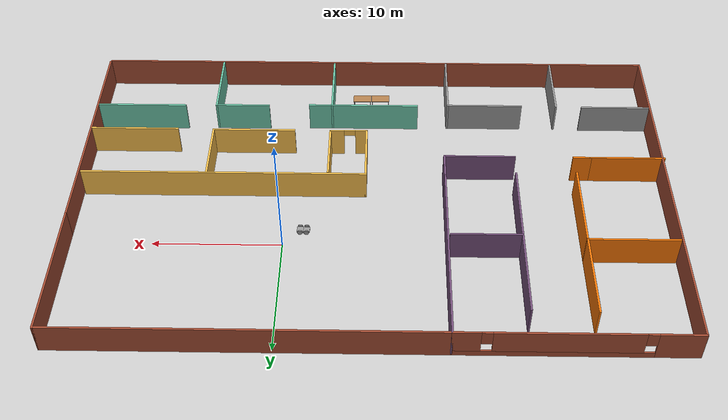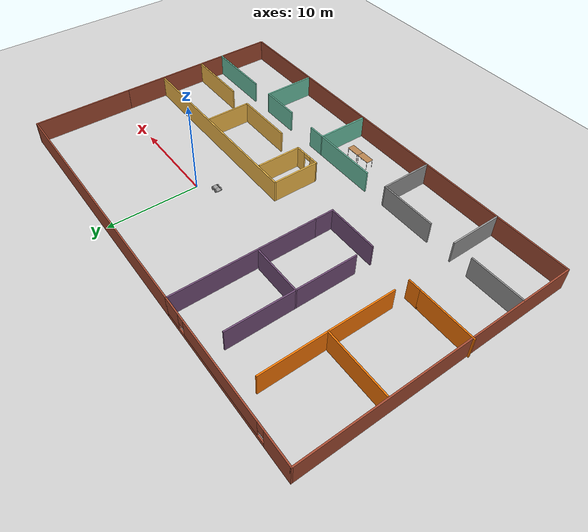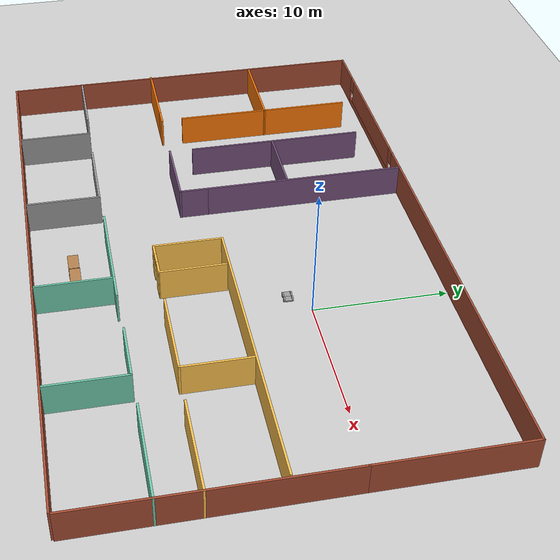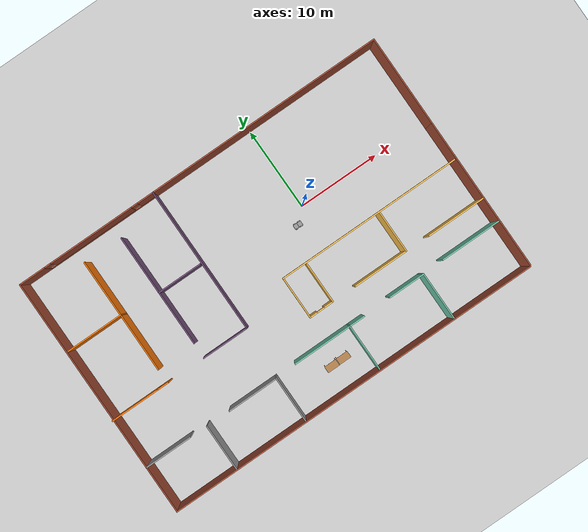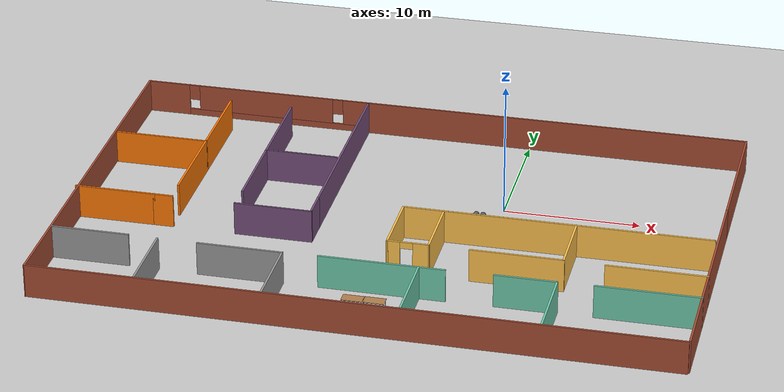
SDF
<sdf version="1.6">
 <world name="default">
  <model name="ground_plane">
   <static>1</static>
   <link name="link">
    <collision name="collision">
     <geometry><plane><normal>0 0 1</normal><size>100 100</size></plane></geometry>
     <surface><friction><ode><mu>100</mu><mu2>50</mu2></ode></friction></surface>
    </collision>
    <visual name="visual">
     <cast_shadows>0</cast_shadows>
     <geometry><plane><normal>0 0 1</normal><size>100 100</size></plane></geometry>
     <material>
      <script><uri>file://media/materials/scripts/gazebo.material</uri><name>Gazebo/Grey</name></script>
     </material>
    </visual>
   </link>
  </model>
  <model name="lil_robot">
   <link name="link_1">
    <inertial>
     <mass>1</mass>
     <inertia>
      <ixx>0.166667</ixx>
      <ixy>0</ixy>
      <ixz>0</ixz>
      <iyy>0.166667</iyy>
      <iyz>0</iyz>
      <izz>0.166667</izz>
     </inertia>
    </inertial>
    <pose>-0.159267 -0.015 -0.014999 0 -0 0</pose>
    <visual name="visual">
     <geometry><box><size>0.5 0.5 0.1</size></box></geometry>
     <material>
      <lighting>1</lighting>
      <script><uri>file://media/materials/scripts/gazebo.material</uri><name>Gazebo/Grey</name></script>
      <shader type="vertex"><normal_map>__default__</normal_map></shader>
      <ambient>0.3 0.3 0.3 1</ambient>
      <diffuse>0.7 0.7 0.7 1</diffuse>
      <specular>0.01 0.01 0.01 1</specular>
      <emissive>0 0 0 1</emissive>
     </material>
    </visual>
    <collision name="collision">
     <geometry><box><size>0.5 0.5 0.1</size></box></geometry>
     <surface>
      <friction>
       <ode><mu>1</mu><mu2>1</mu2><fdir1>0 0 0</fdir1><slip1>0</slip1><slip2>0</slip2></ode>
       <torsional>
        <coefficient>1</coefficient>
        <patch_radius>0</patch_radius>
        <surface_radius>0</surface_radius>
        <use_patch_radius>1</use_patch_radius>
        <ode><slip>0</slip></ode>
       </torsional>
      </friction>
      <bounce><restitution_coefficient>0</restitution_coefficient><threshold>1e+06</threshold></bounce>
      <contact>
       <collide_without_contact>0</collide_without_contact>
       <collide_without_contact_bitmask>1</collide_without_contact_bitmask>
       <collide_bitmask>1</collide_bitmask>
       <ode>
        <soft_cfm>0</soft_cfm>
        <soft_erp>0.2</soft_erp>
        <kp>1e+13</kp>
        <kd>1</kd>
        <max_vel>0.01</max_vel>
        <min_depth>0</min_depth>
       </ode>
       <bullet>
        <split_impulse>1</split_impulse>
        <split_impulse_penetration_threshold>-0.01</split_impulse_penetration_threshold>
        <soft_cfm>0</soft_cfm>
        <soft_erp>0.2</soft_erp>
        <kp>1e+13</kp>
        <kd>1</kd>
       </bullet>
      </contact>
     </surface>
    </collision>
   </link>
   <link name="link_1_clone">
    <inertial>
     <mass>1</mass>
     <inertia>
      <ixx>0.166667</ixx>
      <ixy>0</ixy>
      <ixz>0</ixz>
      <iyy>0.166667</iyy>
      <iyz>0</iyz>
      <izz>0.166667</izz>
     </inertia>
    </inertial>
    <pose>0.340733 -0.015 -0.014999 0 -0 0</pose>
    <visual name="visual">
     <geometry><box><size>0.5 0.5 0.1</size></box></geometry>
     <material>
      <lighting>1</lighting>
      <script><uri>file://media/materials/scripts/gazebo.material</uri><name>Gazebo/Grey</name></script>
      <shader type="vertex"><normal_map>__default__</normal_map></shader>
      <ambient>0.3 0.3 0.3 1</ambient>
      <diffuse>0.7 0.7 0.7 1</diffuse>
      <specular>0.01 0.01 0.01 1</specular>
      <emissive>0 0 0 1</emissive>
     </material>
    </visual>
    <collision name="collision">
     <geometry><box><size>0.5 0.5 0.1</size></box></geometry>
     <surface>
      <friction>
       <ode><mu>1</mu><mu2>1</mu2><fdir1>0 0 0</fdir1><slip1>0</slip1><slip2>0</slip2></ode>
       <torsional>
        <coefficient>1</coefficient>
        <patch_radius>0</patch_radius>
        <surface_radius>0</surface_radius>
        <use_patch_radius>1</use_patch_radius>
        <ode><slip>0</slip></ode>
       </torsional>
      </friction>
      <bounce><restitution_coefficient>0</restitution_coefficient><threshold>1e+06</threshold></bounce>
      <contact>
       <collide_without_contact>0</collide_without_contact>
       <collide_without_contact_bitmask>1</collide_without_contact_bitmask>
       <collide_bitmask>1</collide_bitmask>
       <ode>
        <soft_cfm>0</soft_cfm>
        <soft_erp>0.2</soft_erp>
        <kp>1e+13</kp>
        <kd>1</kd>
        <max_vel>0.01</max_vel>
        <min_depth>0</min_depth>
       </ode>
       <bullet>
        <split_impulse>1</split_impulse>
        <split_impulse_penetration_threshold>-0.01</split_impulse_penetration_threshold>
        <soft_cfm>0</soft_cfm>
        <soft_erp>0.2</soft_erp>
        <kp>1e+13</kp>
        <kd>1</kd>
       </bullet>
      </contact>
     </surface>
    </collision>
   </link>
   <link name="link_2_clone">
    <inertial>
     <mass>1</mass>
     <inertia><ixx>0.145833</ixx><ixy>0</ixy><ixz>0</ixz><iyy>0.145833</iyy><iyz>0</iyz><izz>0.125</izz></inertia>
    </inertial>
    <pose>0.340733 0.285019 -0.014999 1.5707 -0 0</pose>
    <visual name="visual">
     <geometry><cylinder><radius>0.2</radius><length>0.1</length></cylinder></geometry>
     <material>
      <lighting>1</lighting>
      <script><uri>file://media/materials/scripts/gazebo.material</uri><name>Gazebo/Grey</name></script>
      <shader type="vertex"><normal_map>__default__</normal_map></shader>
      <ambient>0.3 0.3 0.3 1</ambient>
      <diffuse>0.7 0.7 0.7 1</diffuse>
      <specular>0.01 0.01 0.01 1</specular>
      <emissive>0 0 0 1</emissive>
     </material>
    </visual>
    <collision name="collision">
     <geometry><cylinder><radius>0.2</radius><length>0.1</length></cylinder></geometry>
     <surface>
      <friction>
       <ode><mu>1</mu><mu2>1</mu2><fdir1>0 0 0</fdir1><slip1>0</slip1><slip2>0</slip2></ode>
       <torsional>
        <coefficient>1</coefficient>
        <patch_radius>0</patch_radius>
        <surface_radius>0</surface_radius>
        <use_patch_radius>1</use_patch_radius>
        <ode><slip>0</slip></ode>
       </torsional>
      </friction>
      <bounce><restitution_coefficient>0</restitution_coefficient><threshold>1e+06</threshold></bounce>
      <contact>
       <collide_without_contact>0</collide_without_contact>
       <collide_without_contact_bitmask>1</collide_without_contact_bitmask>
       <collide_bitmask>1</collide_bitmask>
       <ode>
        <soft_cfm>0</soft_cfm>
        <soft_erp>0.2</soft_erp>
        <kp>1e+13</kp>
        <kd>1</kd>
        <max_vel>0.01</max_vel>
        <min_depth>0</min_depth>
       </ode>
       <bullet>
        <split_impulse>1</split_impulse>
        <split_impulse_penetration_threshold>-0.01</split_impulse_penetration_threshold>
        <soft_cfm>0</soft_cfm>
        <soft_erp>0.2</soft_erp>
        <kp>1e+13</kp>
        <kd>1</kd>
       </bullet>
      </contact>
     </surface>
    </collision>
   </link>
   <link name="link_2_clone_clone">
    <inertial>
     <mass>1</mass>
     <inertia><ixx>0.145833</ixx><ixy>0</ixy><ixz>0</ixz><iyy>0.145833</iyy><iyz>0</iyz><izz>0.125</izz></inertia>
    </inertial>
    <pose>0.340733 -0.315019 -0.014999 1.5707 -0 0</pose>
    <visual name="visual">
     <geometry><cylinder><radius>0.2</radius><length>0.1</length></cylinder></geometry>
     <material>
      <lighting>1</lighting>
      <script><uri>file://media/materials/scripts/gazebo.material</uri><name>Gazebo/Grey</name></script>
      <shader type="vertex"><normal_map>__default__</normal_map></shader>
      <ambient>0.3 0.3 0.3 1</ambient>
      <diffuse>0.7 0.7 0.7 1</diffuse>
      <specular>0.01 0.01 0.01 1</specular>
      <emissive>0 0 0 1</emissive>
     </material>
    </visual>
    <collision name="collision">
     <geometry><cylinder><radius>0.2</radius><length>0.1</length></cylinder></geometry>
     <surface>
      <friction>
       <ode><mu>1</mu><mu2>1</mu2><fdir1>0 0 0</fdir1><slip1>0</slip1><slip2>0</slip2></ode>
       <torsional>
        <coefficient>1</coefficient>
        <patch_radius>0</patch_radius>
        <surface_radius>0</surface_radius>
        <use_patch_radius>1</use_patch_radius>
        <ode><slip>0</slip></ode>
       </torsional>
      </friction>
      <bounce><restitution_coefficient>0</restitution_coefficient><threshold>1e+06</threshold></bounce>
      <contact>
       <collide_without_contact>0</collide_without_contact>
       <collide_without_contact_bitmask>1</collide_without_contact_bitmask>
       <collide_bitmask>1</collide_bitmask>
       <ode>
        <soft_cfm>0</soft_cfm>
        <soft_erp>0.2</soft_erp>
        <kp>1e+13</kp>
        <kd>1</kd>
        <max_vel>0.01</max_vel>
        <min_depth>0</min_depth>
       </ode>
       <bullet>
        <split_impulse>1</split_impulse>
        <split_impulse_penetration_threshold>-0.01</split_impulse_penetration_threshold>
        <soft_cfm>0</soft_cfm>
        <soft_erp>0.2</soft_erp>
        <kp>1e+13</kp>
        <kd>1</kd>
       </bullet>
      </contact>
     </surface>
    </collision>
   </link>
   <link name="link_2_clone_clone_0">
    <inertial>
     <mass>1</mass>
     <inertia><ixx>0.145833</ixx><ixy>0</ixy><ixz>0</ixz><iyy>0.145833</iyy><iyz>0</iyz><izz>0.125</izz></inertia>
    </inertial>
    <pose>-0.159267 0.285019 -0.014999 1.5707 -0 0</pose>
    <visual name="visual">
     <geometry><cylinder><radius>0.2</radius><length>0.1</length></cylinder></geometry>
     <material>
      <lighting>1</lighting>
      <script><uri>file://media/materials/scripts/gazebo.material</uri><name>Gazebo/Grey</name></script>
      <shader type="vertex"><normal_map>__default__</normal_map></shader>
      <ambient>0.3 0.3 0.3 1</ambient>
      <diffuse>0.7 0.7 0.7 1</diffuse>
      <specular>0.01 0.01 0.01 1</specular>
      <emissive>0 0 0 1</emissive>
     </material>
    </visual>
    <collision name="collision">
     <geometry><cylinder><radius>0.2</radius><length>0.1</length></cylinder></geometry>
     <surface>
      <friction>
       <ode><mu>1</mu><mu2>1</mu2><fdir1>0 0 0</fdir1><slip1>0</slip1><slip2>0</slip2></ode>
       <torsional>
        <coefficient>1</coefficient>
        <patch_radius>0</patch_radius>
        <surface_radius>0</surface_radius>
        <use_patch_radius>1</use_patch_radius>
        <ode><slip>0</slip></ode>
       </torsional>
      </friction>
      <bounce><restitution_coefficient>0</restitution_coefficient><threshold>1e+06</threshold></bounce>
      <contact>
       <collide_without_contact>0</collide_without_contact>
       <collide_without_contact_bitmask>1</collide_without_contact_bitmask>
       <collide_bitmask>1</collide_bitmask>
       <ode>
        <soft_cfm>0</soft_cfm>
        <soft_erp>0.2</soft_erp>
        <kp>1e+13</kp>
        <kd>1</kd>
        <max_vel>0.01</max_vel>
        <min_depth>0</min_depth>
       </ode>
       <bullet>
        <split_impulse>1</split_impulse>
        <split_impulse_penetration_threshold>-0.01</split_impulse_penetration_threshold>
        <soft_cfm>0</soft_cfm>
        <soft_erp>0.2</soft_erp>
        <kp>1e+13</kp>
        <kd>1</kd>
       </bullet>
      </contact>
     </surface>
    </collision>
   </link>
   <link name="link_2_clone_clone_1">
    <inertial>
     <mass>1</mass>
     <inertia><ixx>0.145833</ixx><ixy>0</ixy><ixz>0</ixz><iyy>0.145833</iyy><iyz>0</iyz><izz>0.125</izz></inertia>
    </inertial>
    <pose>-0.159267 -0.315019 -0.014999 1.5707 -0 0</pose>
    <visual name="visual">
     <geometry><cylinder><radius>0.2</radius><length>0.1</length></cylinder></geometry>
     <material>
      <lighting>1</lighting>
      <script><uri>file://media/materials/scripts/gazebo.material</uri><name>Gazebo/Grey</name></script>
      <shader type="vertex"><normal_map>__default__</normal_map></shader>
      <ambient>0.3 0.3 0.3 1</ambient>
      <diffuse>0.7 0.7 0.7 1</diffuse>
      <specular>0.01 0.01 0.01 1</specular>
      <emissive>0 0 0 1</emissive>
     </material>
    </visual>
    <collision name="collision">
     <geometry><cylinder><radius>0.2</radius><length>0.1</length></cylinder></geometry>
     <surface>
      <friction>
       <ode><mu>1</mu><mu2>1</mu2><fdir1>0 0 0</fdir1><slip1>0</slip1><slip2>0</slip2></ode>
       <torsional>
        <coefficient>1</coefficient>
        <patch_radius>0</patch_radius>
        <surface_radius>0</surface_radius>
        <use_patch_radius>1</use_patch_radius>
        <ode><slip>0</slip></ode>
       </torsional>
      </friction>
      <bounce><restitution_coefficient>0</restitution_coefficient><threshold>1e+06</threshold></bounce>
      <contact>
       <collide_without_contact>0</collide_without_contact>
       <collide_without_contact_bitmask>1</collide_without_contact_bitmask>
       <collide_bitmask>1</collide_bitmask>
       <ode>
        <soft_cfm>0</soft_cfm>
        <soft_erp>0.2</soft_erp>
        <kp>1e+13</kp>
        <kd>1</kd>
        <max_vel>0.01</max_vel>
        <min_depth>0</min_depth>
       </ode>
       <bullet>
        <split_impulse>1</split_impulse>
        <split_impulse_penetration_threshold>-0.01</split_impulse_penetration_threshold>
        <soft_cfm>0</soft_cfm>
        <soft_erp>0.2</soft_erp>
        <kp>1e+13</kp>
        <kd>1</kd>
       </bullet>
      </contact>
     </surface>
    </collision>
   </link>
   <joint name="link_1_JOINT_1" type="fixed">
    <parent>link_1</parent>
    <child>link_1_clone</child>
    <physics>
     <ode><limit><cfm>0</cfm><erp>0.2</erp></limit><suspension><cfm>0</cfm><erp>0.2</erp></suspension></ode>
    </physics>
   </joint>
   <joint name="link_1_JOINT_3" type="revolute">
    <parent>link_1</parent>
    <child>link_2_clone_clone_0</child>
    <axis>
     <xyz>0 0 1</xyz>
     <use_parent_model_frame>0</use_parent_model_frame>
     <limit>
      <lower>-1.79769e+308</lower>
      <upper>1.79769e+308</upper>
      <effort>-1</effort>
      <velocity>-1</velocity>
     </limit>
     <dynamics>
      <spring_reference>0</spring_reference>
      <spring_stiffness>0</spring_stiffness>
      <damping>0</damping>
     </dynamics>
    </axis>
    <physics>
     <ode><limit><cfm>0</cfm><erp>0.2</erp></limit><suspension><cfm>0</cfm><erp>0.2</erp></suspension></ode>
    </physics>
   </joint>
   <joint name="link_1_JOINT_4" type="revolute">
    <parent>link_1</parent>
    <child>link_2_clone_clone_1</child>
    <axis>
     <xyz>0 0 1</xyz>
     <use_parent_model_frame>0</use_parent_model_frame>
     <limit>
      <lower>-1.79769e+308</lower>
      <upper>1.79769e+308</upper>
      <effort>-1</effort>
      <velocity>-1</velocity>
     </limit>
     <dynamics>
      <spring_reference>0</spring_reference>
      <spring_stiffness>0</spring_stiffness>
      <damping>0</damping>
     </dynamics>
    </axis>
    <physics>
     <ode><limit><cfm>0</cfm><erp>0.2</erp></limit><suspension><cfm>0</cfm><erp>0.2</erp></suspension></ode>
    </physics>
   </joint>
   <joint name="link_1_clone_JOINT_4" type="revolute">
    <parent>link_1_clone</parent>
    <child>link_2_clone</child>
    <axis>
     <xyz>0 0 1</xyz>
     <use_parent_model_frame>0</use_parent_model_frame>
     <limit>
      <lower>-1.79769e+308</lower>
      <upper>1.79769e+308</upper>
      <effort>-1</effort>
      <velocity>-1</velocity>
     </limit>
     <dynamics>
      <spring_reference>0</spring_reference>
      <spring_stiffness>0</spring_stiffness>
      <damping>0</damping>
      <friction>0</friction>
     </dynamics>
    </axis>
    <physics>
     <ode><limit><cfm>0</cfm><erp>0.2</erp></limit><suspension><cfm>0</cfm><erp>0.2</erp></suspension></ode>
    </physics>
   </joint>
   <joint name="link_1_clone_JOINT_5" type="revolute">
    <parent>link_1_clone</parent>
    <child>link_2_clone_clone</child>
    <axis>
     <xyz>0 0 1</xyz>
     <use_parent_model_frame>0</use_parent_model_frame>
     <limit>
      <lower>-1.79769e+308</lower>
      <upper>1.79769e+308</upper>
      <effort>-1</effort>
      <velocity>-1</velocity>
     </limit>
     <dynamics>
      <spring_reference>0</spring_reference>
      <spring_stiffness>0</spring_stiffness>
      <damping>0</damping>
      <friction>0</friction>
     </dynamics>
    </axis>
    <physics>
     <ode><limit><cfm>0</cfm><erp>0.2</erp></limit><suspension><cfm>0</cfm><erp>0.2</erp></suspension></ode>
    </physics>
   </joint>
   <static>0</static>
   <pose>-1.64099 -1.45682 0.215004 -0 -0 -0.016943</pose>
  </model>
  <model name="sinap_office">
   <pose>-6.8627 -4.6506 0 0 -0 0</pose>
   <link name="Wall_11">
    <pose>-14.3528 14.8 0 0 -0 0</pose>
    <visual name="Wall_11_Visual_0">
     <pose>-7.1066 0 1.25 0 -0 0</pose>
     <geometry><box><size>3.2868 0.15 2.5</size></box></geometry>
     <material>
      <script><uri>file://media/materials/scripts/gazebo.material</uri><name>Gazebo/Bricks</name></script>
      <ambient>1 1 1 1</ambient>
     </material>
     <meta><layer>0</layer></meta>
    </visual>
    <collision name="Wall_11_Collision_0">
     <geometry><box><size>3.2868 0.15 2.5</size></box></geometry>
     <pose>-7.1066 0 1.25 0 -0 0</pose>
    </collision>
    <visual name="Wall_11_Visual_1">
     <pose>1.6434 0 0.25 0 -0 0</pose>
     <geometry><box><size>14.2132 0.15 0.5</size></box></geometry>
     <material>
      <script><uri>file://media/materials/scripts/gazebo.material</uri><name>Gazebo/Bricks</name></script>
      <ambient>1 1 1 1</ambient>
     </material>
     <meta><layer>0</layer></meta>
    </visual>
    <collision name="Wall_11_Collision_1">
     <geometry><box><size>14.2132 0.15 0.5</size></box></geometry>
     <pose>1.6434 0 0.25 0 -0 0</pose>
    </collision>
    <visual name="Wall_11_Visual_2">
     <pose>0.608596 0 1.5 0 -0 0</pose>
     <geometry><box><size>10.5436 0.15 2</size></box></geometry>
     <material>
      <script><uri>file://media/materials/scripts/gazebo.material</uri><name>Gazebo/Bricks</name></script>
      <ambient>1 1 1 1</ambient>
     </material>
     <meta><layer>0</layer></meta>
    </visual>
    <collision name="Wall_11_Collision_2">
     <geometry><box><size>10.5436 0.15 2</size></box></geometry>
     <pose>0.608596 0 1.5 0 -0 0</pose>
    </collision>
    <visual name="Wall_11_Visual_3">
     <pose>7.71519 0 1.5 0 -0 0</pose>
     <geometry><box><size>2.06961 0.15 2</size></box></geometry>
     <material>
      <script><uri>file://media/materials/scripts/gazebo.material</uri><name>Gazebo/Bricks</name></script>
      <ambient>1 1 1 1</ambient>
     </material>
     <meta><layer>0</layer></meta>
    </visual>
    <collision name="Wall_11_Collision_3">
     <geometry><box><size>2.06961 0.15 2</size></box></geometry>
     <pose>7.71519 0 1.5 0 -0 0</pose>
    </collision>
    <visual name="Wall_11_Visual_4">
     <pose>-5.0632 0 1.9 0 -0 0</pose>
     <geometry><box><size>0.8 0.15 1.2</size></box></geometry>
     <material>
      <script><uri>file://media/materials/scripts/gazebo.material</uri><name>Gazebo/Bricks</name></script>
      <ambient>1 1 1 1</ambient>
     </material>
     <meta><layer>0</layer></meta>
    </visual>
    <collision name="Wall_11_Collision_4">
     <geometry><box><size>0.8 0.15 1.2</size></box></geometry>
     <pose>-5.0632 0 1.9 0 -0 0</pose>
    </collision>
    <visual name="Wall_11_Visual_5">
     <pose>6.28039 0 1.9 0 -0 0</pose>
     <geometry><box><size>0.8 0.15 1.2</size></box></geometry>
     <material>
      <script><uri>file://media/materials/scripts/gazebo.material</uri><name>Gazebo/Bricks</name></script>
      <ambient>1 1 1 1</ambient>
     </material>
     <meta><layer>0</layer></meta>
    </visual>
    <collision name="Wall_11_Collision_5">
     <geometry><box><size>0.8 0.15 1.2</size></box></geometry>
     <pose>6.28039 0 1.9 0 -0 0</pose>
    </collision>
   </link>
   <link name="Wall_12">
    <collision name="Wall_12_Collision">
     <geometry><box><size>15.75 0.15 2.5</size></box></geometry>
     <pose>0 0 1.25 0 -0 0</pose>
    </collision>
    <visual name="Wall_12_Visual">
     <pose>0 0 1.25 0 -0 0</pose>
     <geometry><box><size>15.75 0.15 2.5</size></box></geometry>
     <material>
      <script><uri>file://media/materials/scripts/gazebo.material</uri><name>Gazebo/Grey</name></script>
      <ambient>0.458824 0.313726 0.482353 1</ambient>
     </material>
     <meta><layer>0</layer></meta>
    </visual>
    <pose>-5.67784 7 0 0 -0 -1.5708</pose>
   </link>
   <link name="Wall_14">
    <collision name="Wall_14_Collision">
     <geometry><box><size>29 0.15 2.5</size></box></geometry>
     <pose>0 0 1.25 0 -0 0</pose>
    </collision>
    <visual name="Wall_14_Visual">
     <pose>0 0 1.25 0 -0 0</pose>
     <geometry><box><size>29 0.15 2.5</size></box></geometry>
     <material>
      <script><uri>file://media/materials/scripts/gazebo.material</uri><name>Gazebo/Bricks</name></script>
      <ambient>1 1 1 1</ambient>
     </material>
     <meta><layer>0</layer></meta>
    </visual>
    <pose>8.74716 14.8 0 0 -0 0</pose>
   </link>
   <link name="Wall_15">
    <collision name="Wall_15_Collision">
     <geometry><box><size>11 0.15 2.5</size></box></geometry>
     <pose>0 0 1.25 0 -0 0</pose>
    </collision>
    <visual name="Wall_15_Visual">
     <pose>0 0 1.25 0 -0 0</pose>
     <geometry><box><size>11 0.15 2.5</size></box></geometry>
     <material>
      <script><uri>file://media/materials/scripts/gazebo.material</uri><name>Gazebo/Bricks</name></script>
      <ambient>1 1 1 1</ambient>
     </material>
     <meta><layer>0</layer></meta>
    </visual>
    <pose>23.1722 9.375 0 0 -0 -1.5708</pose>
   </link>
   <link name="Wall_16">
    <collision name="Wall_16_Collision">
     <geometry><box><size>18.75 0.15 2.5</size></box></geometry>
     <pose>0 0 1.25 0 -0 0</pose>
    </collision>
    <visual name="Wall_16_Visual">
     <pose>0 0 1.25 0 -0 0</pose>
     <geometry><box><size>18.75 0.15 2.5</size></box></geometry>
     <material>
      <script><uri>file://media/materials/scripts/gazebo.material</uri><name>Gazebo/Bricks</name></script>
      <ambient>1 1 1 1</ambient>
     </material>
     <meta><layer>0</layer></meta>
    </visual>
    <pose>23.1722 -5.35 0 0 -0 -1.5708</pose>
   </link>
   <link name="Wall_18">
    <collision name="Wall_18_Collision">
     <geometry><box><size>46.25 0.15 2.5</size></box></geometry>
     <pose>0 0 1.25 0 -0 0</pose>
    </collision>
    <visual name="Wall_18_Visual">
     <pose>0 0 1.25 0 -0 0</pose>
     <geometry><box><size>46.25 0.15 2.5</size></box></geometry>
     <material>
      <script><uri>file://media/materials/scripts/gazebo.material</uri><name>Gazebo/Bricks</name></script>
      <ambient>0.435294 0.796078 0.67451 1</ambient>
     </material>
     <meta><layer>0</layer></meta>
    </visual>
    <pose>0.022159 -14.8 0 0 -0 0</pose>
   </link>
   <link name="Wall_22">
    <collision name="Wall_22_Collision">
     <geometry><box><size>22.5 0.15 2.5</size></box></geometry>
     <pose>0 0 1.25 0 -0 0</pose>
    </collision>
    <visual name="Wall_22_Visual">
     <pose>0 0 1.25 0 -0 0</pose>
     <geometry><box><size>22.5 0.15 2.5</size></box></geometry>
     <material>
      <script><uri>file://media/materials/scripts/gazebo.material</uri><name>Gazebo/Grey</name></script>
      <ambient>1 0.764706 0.305882 1</ambient>
     </material>
     <meta><layer>0</layer></meta>
    </visual>
    <pose>11.7514 -0.741547 0 0 -0 0</pose>
   </link>
   <link name="Wall_24">
    <collision name="Wall_24_Collision">
     <geometry><box><size>5.25 0.15 2.5</size></box></geometry>
     <pose>0 0 1.25 0 -0 0</pose>
    </collision>
    <visual name="Wall_24_Visual">
     <pose>0 0 1.25 0 -0 0</pose>
     <geometry><box><size>5.25 0.15 2.5</size></box></geometry>
     <material>
      <script><uri>file://media/materials/scripts/gazebo.material</uri><name>Gazebo/Grey</name></script>
      <ambient>1 0.764706 0.305882 1</ambient>
     </material>
     <meta><layer>0</layer></meta>
    </visual>
    <pose>0.57639 -3.29155 0 0 -0 -1.5708</pose>
   </link>
   <link name="Wall_31">
    <collision name="Wall_31_Collision">
     <geometry><box><size>2.25 0.15 2.5</size></box></geometry>
     <pose>0 0 1.25 0 -0 0</pose>
    </collision>
    <visual name="Wall_31_Visual">
     <pose>0 0 1.25 0 -0 0</pose>
     <geometry><box><size>2.25 0.15 2.5</size></box></geometry>
     <material>
      <script><uri>file://media/materials/scripts/gazebo.material</uri><name>Gazebo/Grey</name></script>
      <ambient>0.458824 0.313726 0.482353 1</ambient>
     </material>
     <meta><layer>0</layer></meta>
    </visual>
    <pose>-5.67784 -1.85 0 0 -0 -1.5708</pose>
   </link>
   <link name="Wall_34">
    <collision name="Wall_34_Collision">
     <geometry><box><size>5.75 0.15 2.5</size></box></geometry>
     <pose>0 0 1.25 0 -0 0</pose>
    </collision>
    <visual name="Wall_34_Visual">
     <pose>0 0 1.25 0 -0 0</pose>
     <geometry><box><size>5.75 0.15 2.5</size></box></geometry>
     <material>
      <script><uri>file://media/materials/scripts/gazebo.material</uri><name>Gazebo/Grey</name></script>
      <ambient>0.458824 0.313726 0.482353 1</ambient>
     </material>
     <meta><layer>0</layer></meta>
    </visual>
    <pose>-8.47784 -2.9 0 0 -0 3.14159</pose>
   </link>
   <link name="Wall_40">
    <collision name="Wall_40_Collision">
     <geometry><box><size>6 0.15 2.5</size></box></geometry>
     <pose>0 0 1.25 0 -0 0</pose>
    </collision>
    <visual name="Wall_40_Visual">
     <pose>0 0 1.25 0 -0 0</pose>
     <geometry><box><size>6 0.15 2.5</size></box></geometry>
     <material>
      <script><uri>file://media/materials/scripts/gazebo.material</uri><name>Gazebo/Grey</name></script>
      <ambient>0.996078 0.47451 0.0196078 1</ambient>
     </material>
     <meta><layer>0</layer></meta>
    </visual>
    <pose>-20.2478 -2.88015 0 0 -0 0</pose>
   </link>
   <link name="Wall_42">
    <collision name="Wall_42_Collision">
     <geometry><box><size>1.5 0.15 2.5</size></box></geometry>
     <pose>0 0 1.25 0 -0 0</pose>
    </collision>
    <visual name="Wall_42_Visual">
     <pose>0 0 1.25 0 -0 0</pose>
     <geometry><box><size>1.5 0.15 2.5</size></box></geometry>
     <material>
      <script><uri>file://media/materials/scripts/gazebo.material</uri><name>Gazebo/Grey</name></script>
      <ambient>0.996078 0.47451 0.0196078 1</ambient>
     </material>
     <meta><layer>0</layer></meta>
    </visual>
    <pose>-16.6478 -2.88015 0 0 -0 0</pose>
   </link>
   <link name="Wall_45">
    <collision name="Wall_45_Collision">
     <geometry><box><size>7 0.15 2.5</size></box></geometry>
     <pose>0 0 1.25 0 -0 0</pose>
    </collision>
    <visual name="Wall_45_Visual">
     <pose>0 0 1.25 0 -0 0</pose>
     <geometry><box><size>7 0.15 2.5</size></box></geometry>
     <material>
      <script><uri>file://media/materials/scripts/gazebo.material</uri><name>Gazebo/Grey</name></script>
      <ambient>0.996078 0.47451 0.0196078 1</ambient>
     </material>
     <meta><layer>0</layer></meta>
    </visual>
    <pose>-19.4223 5.97736 0 0 -0 3.14159</pose>
   </link>
   <link name="Wall_47">
    <collision name="Wall_47_Collision">
     <geometry><box><size>5.5 0.15 2.5</size></box></geometry>
     <pose>0 0 1.25 0 -0 0</pose>
    </collision>
    <visual name="Wall_47_Visual">
     <pose>0 0 1.25 0 -0 0</pose>
     <geometry><box><size>5.5 0.15 2.5</size></box></geometry>
     <material>
      <script><uri>file://media/materials/scripts/gazebo.material</uri><name>Gazebo/Grey</name></script>
      <ambient>0.458824 0.313726 0.482353 1</ambient>
     </material>
     <meta><layer>0</layer></meta>
    </visual>
    <pose>-8.56965 5.60305 0 0 -0 0</pose>
   </link>
   <link name="Wall_49">
    <collision name="Wall_49_Collision">
     <geometry><box><size>5 0.15 2.5</size></box></geometry>
     <pose>0 0 1.25 0 -0 0</pose>
    </collision>
    <visual name="Wall_49_Visual">
     <pose>0 0 1.25 0 -0 0</pose>
     <geometry><box><size>5 0.15 2.5</size></box></geometry>
     <material>
      <script><uri>file://media/materials/scripts/gazebo.material</uri><name>Gazebo/Grey</name></script>
      <ambient>1 0.764706 0.305882 1</ambient>
     </material>
     <meta><layer>0</layer></meta>
    </visual>
    <pose>3.54039 -3.38824 0 0 -0 1.5708</pose>
   </link>
   <link name="Wall_56">
    <collision name="Wall_56_Collision">
     <geometry><box><size>5.25 0.15 2.5</size></box></geometry>
     <pose>0 0 1.25 0 -0 0</pose>
    </collision>
    <visual name="Wall_56_Visual">
     <pose>0 0 1.25 0 -0 0</pose>
     <geometry><box><size>5.25 0.15 2.5</size></box></geometry>
     <material>
      <script><uri>file://media/materials/scripts/gazebo.material</uri><name>Gazebo/Grey</name></script>
      <ambient>1 0.764706 0.305882 1</ambient>
     </material>
     <meta><layer>0</layer></meta>
    </visual>
    <pose>13.1047 -3.29435 0 0 -0 -1.5708</pose>
   </link>
   <link name="Wall_60">
    <collision name="Wall_60_Collision">
     <geometry><box><size>5.75 0.15 2.5</size></box></geometry>
     <pose>0 0 1.25 0 -0 0</pose>
    </collision>
    <visual name="Wall_60_Visual">
     <pose>0 0 1.25 0 -0 0</pose>
     <geometry><box><size>5.75 0.15 2.5</size></box></geometry>
     <material>
      <script><uri>file://media/materials/scripts/gazebo.material</uri><name>Gazebo/Grey</name></script>
      <ambient>0.435294 0.796078 0.67451 1</ambient>
     </material>
     <meta><layer>0</layer></meta>
    </visual>
    <pose>3.52722 -11.8305 0 0 -0 -1.5708</pose>
   </link>
   <link name="Wall_62">
    <collision name="Wall_62_Collision">
     <geometry><box><size>5.75 0.15 2.5</size></box></geometry>
     <pose>0 0 1.25 0 -0 0</pose>
    </collision>
    <visual name="Wall_62_Visual">
     <pose>0 0 1.25 0 -0 0</pose>
     <geometry><box><size>5.75 0.15 2.5</size></box></geometry>
     <material>
      <script><uri>file://media/materials/scripts/gazebo.material</uri><name>Gazebo/Grey</name></script>
      <ambient>1 1 1 1</ambient>
     </material>
     <meta><layer>0</layer></meta>
    </visual>
    <pose>-6.15792 -11.9381 0 0 -0 -1.5708</pose>
   </link>
   <link name="Wall_64">
    <collision name="Wall_64_Collision">
     <geometry><box><size>5.75 0.15 2.5</size></box></geometry>
     <pose>0 0 1.25 0 -0 0</pose>
    </collision>
    <visual name="Wall_64_Visual">
     <pose>0 0 1.25 0 -0 0</pose>
     <geometry><box><size>5.75 0.15 2.5</size></box></geometry>
     <material>
      <script><uri>file://media/materials/scripts/gazebo.material</uri><name>Gazebo/Grey</name></script>
      <ambient>1 1 1 1</ambient>
     </material>
     <meta><layer>0</layer></meta>
    </visual>
    <pose>-15.1974 -11.9381 0 0 -0 -1.5708</pose>
   </link>
   <link name="Wall_66">
    <collision name="Wall_66_Collision">
     <geometry><box><size>7.25 0.15 2.5</size></box></geometry>
     <pose>0 0 1.25 0 -0 0</pose>
    </collision>
    <visual name="Wall_66_Visual">
     <pose>0 0 1.25 0 -0 0</pose>
     <geometry><box><size>7.25 0.15 2.5</size></box></geometry>
     <material>
      <script><uri>file://media/materials/scripts/gazebo.material</uri><name>Gazebo/Grey</name></script>
      <ambient>0.458824 0.313726 0.482353 1</ambient>
     </material>
     <meta><layer>0</layer></meta>
    </visual>
    <pose>-11.2446 9.15305 0 0 -0 1.5708</pose>
   </link>
   <link name="Wall_68">
    <collision name="Wall_68_Collision">
     <geometry><box><size>6.75 0.15 2.5</size></box></geometry>
     <pose>0 0 1.25 0 -0 0</pose>
    </collision>
    <visual name="Wall_68_Visual">
     <pose>0 0 1.25 0 -0 0</pose>
     <geometry><box><size>6.75 0.15 2.5</size></box></geometry>
     <material>
      <script><uri>file://media/materials/scripts/gazebo.material</uri><name>Gazebo/Grey</name></script>
      <ambient>0.458824 0.313726 0.482353 1</ambient>
     </material>
     <meta><layer>0</layer></meta>
    </visual>
    <pose>-11.2446 2.30305 0 0 -0 -1.5708</pose>
   </link>
   <link name="Wall_70">
    <collision name="Wall_70_Collision">
     <geometry><box><size>7.25003 0.15 2.5</size></box></geometry>
     <pose>0 0 1.25 0 -0 0</pose>
    </collision>
    <visual name="Wall_70_Visual">
     <pose>0 0 1.25 0 -0 0</pose>
     <geometry><box><size>7.25003 0.15 2.5</size></box></geometry>
     <material>
      <script><uri>file://media/materials/scripts/gazebo.material</uri><name>Gazebo/Grey</name></script>
      <ambient>0.996078 0.47451 0.0196078 1</ambient>
     </material>
     <meta><layer>0</layer></meta>
    </visual>
    <pose>-16.0071 2.42736 0 0 -0 -1.57358</pose>
   </link>
   <link name="Wall_72">
    <collision name="Wall_72_Collision">
     <geometry><box><size>7 0.15 2.5</size></box></geometry>
     <pose>0 0 1.25 0 -0 0</pose>
    </collision>
    <visual name="Wall_72_Visual">
     <pose>0 0 1.25 0 -0 0</pose>
     <geometry><box><size>7 0.15 2.5</size></box></geometry>
     <material>
      <script><uri>file://media/materials/scripts/gazebo.material</uri><name>Gazebo/Grey</name></script>
      <ambient>0.996078 0.47451 0.0196078 1</ambient>
     </material>
     <meta><layer>0</layer></meta>
    </visual>
    <pose>-15.9973 9.38258 0 0 -0 1.5708</pose>
   </link>
   <link name="Wall_74">
    <collision name="Wall_74_Collision">
     <geometry><box><size>5.75 0.15 2.5</size></box></geometry>
     <pose>0 0 1.25 0 -0 0</pose>
    </collision>
    <visual name="Wall_74_Visual">
     <pose>0 0 1.25 0 -0 0</pose>
     <geometry><box><size>5.75 0.15 2.5</size></box></geometry>
     <material>
      <script><uri>file://media/materials/scripts/gazebo.material</uri><name>Gazebo/Grey</name></script>
      <ambient>1 1 1 1</ambient>
     </material>
     <meta><layer>0</layer></meta>
    </visual>
    <pose>-20.1768 -9.05523 0 0 -0 0</pose>
   </link>
   <link name="Wall_76">
    <collision name="Wall_76_Collision">
     <geometry><box><size>6.25 0.15 2.5</size></box></geometry>
     <pose>0 0 1.25 0 -0 0</pose>
    </collision>
    <visual name="Wall_76_Visual">
     <pose>0 0 1.25 0 -0 0</pose>
     <geometry><box><size>6.25 0.15 2.5</size></box></geometry>
     <material>
      <script><uri>file://media/materials/scripts/gazebo.material</uri><name>Gazebo/Grey</name></script>
      <ambient>1 1 1 1</ambient>
     </material>
     <meta><layer>0</layer></meta>
    </visual>
    <pose>-9.20792 -9.13814 0 0 -0 3.14159</pose>
   </link>
   <link name="Wall_78">
    <collision name="Wall_78_Collision">
     <geometry><box><size>7.25 0.15 2.5</size></box></geometry>
     <pose>0 0 1.25 0 -0 0</pose>
    </collision>
    <visual name="Wall_78_Visual">
     <pose>0 0 1.25 0 -0 0</pose>
     <geometry><box><size>7.25 0.15 2.5</size></box></geometry>
     <material>
      <script><uri>file://media/materials/scripts/gazebo.material</uri><name>Gazebo/Grey</name></script>
      <ambient>0.435294 0.796078 0.67451 1</ambient>
     </material>
     <meta><layer>0</layer></meta>
    </visual>
    <pose>-0.022782 -9.03053 0 0 -0 3.14159</pose>
   </link>
   <link name="Wall_80">
    <collision name="Wall_80_Collision">
     <geometry><box><size>2 0.15 2.5</size></box></geometry>
     <pose>0 0 1.25 0 -0 0</pose>
    </collision>
    <visual name="Wall_80_Visual">
     <pose>0 0 1.25 0 -0 0</pose>
     <geometry><box><size>2 0.15 2.5</size></box></geometry>
     <material>
      <script><uri>file://media/materials/scripts/gazebo.material</uri><name>Gazebo/Grey</name></script>
      <ambient>0.435294 0.796078 0.67451 1</ambient>
     </material>
     <meta><layer>0</layer></meta>
    </visual>
    <pose>4.45222 -9.03053 0 0 -0 0</pose>
   </link>
   <link name="Wall_83">
    <collision name="Wall_83_Collision">
     <geometry><box><size>4.5 0.15 2.5</size></box></geometry>
     <pose>0 0 1.25 0 -0 0</pose>
    </collision>
    <visual name="Wall_83_Visual">
     <pose>0 0 1.25 0 -0 0</pose>
     <geometry><box><size>4.5 0.15 2.5</size></box></geometry>
     <material>
      <script><uri>file://media/materials/scripts/gazebo.material</uri><name>Gazebo/Grey</name></script>
      <ambient>0.435294 0.796078 0.67451 1</ambient>
     </material>
     <meta><layer>0</layer></meta>
    </visual>
    <pose>11.0308 -8.93741 0 0 -0 0</pose>
   </link>
   <link name="Wall_84">
    <collision name="Wall_84_Collision">
     <geometry><box><size>6 0.15 2.5</size></box></geometry>
     <pose>0 0 1.25 0 -0 0</pose>
    </collision>
    <visual name="Wall_84_Visual">
     <pose>0 0 1.25 0 -0 0</pose>
     <geometry><box><size>6 0.15 2.5</size></box></geometry>
     <material>
      <script><uri>file://media/materials/scripts/gazebo.material</uri><name>Gazebo/Grey</name></script>
      <ambient>0.435294 0.796078 0.67451 1</ambient>
     </material>
     <meta><layer>0</layer></meta>
    </visual>
    <pose>13.2058 -11.8624 0 0 -0 -1.5708</pose>
   </link>
   <link name="Wall_86">
    <collision name="Wall_86_Collision">
     <geometry><box><size>7.25 0.15 2.5</size></box></geometry>
     <pose>0 0 1.25 0 -0 0</pose>
    </collision>
    <visual name="Wall_86_Visual">
     <pose>0 0 1.25 0 -0 0</pose>
     <geometry><box><size>7.25 0.15 2.5</size></box></geometry>
     <material>
      <script><uri>file://media/materials/scripts/gazebo.material</uri><name>Gazebo/Grey</name></script>
      <ambient>1 0.764706 0.305882 1</ambient>
     </material>
     <meta><layer>0</layer></meta>
    </visual>
    <pose>19.6228 -5.9023 0 0 -0 3.14159</pose>
   </link>
   <link name="Wall_88">
    <collision name="Wall_88_Collision">
     <geometry><box><size>7.5 0.15 2.5</size></box></geometry>
     <pose>0 0 1.25 0 -0 0</pose>
    </collision>
    <visual name="Wall_88_Visual">
     <pose>0 0 1.25 0 -0 0</pose>
     <geometry><box><size>7.5 0.15 2.5</size></box></geometry>
     <material>
      <script><uri>file://media/materials/scripts/gazebo.material</uri><name>Gazebo/Grey</name></script>
      <ambient>0.435294 0.796078 0.67451 1</ambient>
     </material>
     <meta><layer>0</layer></meta>
    </visual>
    <pose>19.4978 -8.8647 0 0 -0 3.14159</pose>
   </link>
   <link name="Wall_9">
    <collision name="Wall_9_Collision">
     <geometry><box><size>29.75 0.15 2.5</size></box></geometry>
     <pose>0 0 1.25 0 -0 0</pose>
    </collision>
    <visual name="Wall_9_Visual">
     <pose>0 0 1.25 0 -0 0</pose>
     <geometry><box><size>29.75 0.15 2.5</size></box></geometry>
     <material>
      <script><uri>file://media/materials/scripts/gazebo.material</uri><name>Gazebo/Bricks</name></script>
      <ambient>1 1 1 1</ambient>
     </material>
     <meta><layer>0</layer></meta>
    </visual>
    <pose>-23.0278 0 0 0 -0 -1.5708</pose>
   </link>
   <link name="Wall_91">
    <collision name="Wall_91_Collision">
     <geometry><box><size>6.75 0.15 2.5</size></box></geometry>
     <pose>0 0 1.25 0 -0 0</pose>
    </collision>
    <visual name="Wall_91_Visual">
     <pose>0 0 1.25 0 -0 0</pose>
     <geometry><box><size>6.75 0.15 2.5</size></box></geometry>
     <material>
      <script><uri>file://media/materials/scripts/gazebo.material</uri><name>Gazebo/Grey</name></script>
      <ambient>1 0.764706 0.305882 1</ambient>
     </material>
     <meta><layer>0</layer></meta>
    </visual>
    <pose>9.80474 -5.84436 0 0 -0 3.14159</pose>
   </link>
   <link name="Wall_93">
    <pose>2.05839 -5.8274 0 0 -0 0.009549</pose>
    <visual name="Wall_93_Visual_0">
     <pose>-1.05491 0 1.25 0 -0 0</pose>
     <geometry><box><size>1.00432 0.15 2.5</size></box></geometry>
     <material>
      <script><uri>file://media/materials/scripts/gazebo.material</uri><name>Gazebo/Grey</name></script>
      <ambient>1 0.764706 0.305882 1</ambient>
     </material>
     <meta><layer>0</layer></meta>
    </visual>
    <collision name="Wall_93_Collision_0">
     <geometry><box><size>1.00432 0.15 2.5</size></box></geometry>
     <pose>-1.05491 0 1.25 0 -0 0</pose>
    </collision>
    <visual name="Wall_93_Visual_1">
     <pose>0.95216 0 1.25 0 -0 0</pose>
     <geometry><box><size>1.20982 0.15 2.5</size></box></geometry>
     <material>
      <script><uri>file://media/materials/scripts/gazebo.material</uri><name>Gazebo/Grey</name></script>
      <ambient>1 0.764706 0.305882 1</ambient>
     </material>
     <meta><layer>0</layer></meta>
    </visual>
    <collision name="Wall_93_Collision_1">
     <geometry><box><size>1.20982 0.15 2.5</size></box></geometry>
     <pose>0.95216 0 1.25 0 -0 0</pose>
    </collision>
    <visual name="Wall_93_Visual_2">
     <pose>-0.102748 0 2.25 0 -0 0</pose>
     <geometry><box><size>0.9 0.15 0.5</size></box></geometry>
     <material>
      <script><uri>file://media/materials/scripts/gazebo.material</uri><name>Gazebo/Grey</name></script>
      <ambient>1 0.764706 0.305882 1</ambient>
     </material>
     <meta><layer>0</layer></meta>
    </visual>
    <collision name="Wall_93_Collision_2">
     <geometry><box><size>0.9 0.15 0.5</size></box></geometry>
     <pose>-0.102748 0 2.25 0 -0 0</pose>
    </collision>
   </link>
   <static>1</static>
  </model>
  <model name="table_clone_10">
   <static>1</static>
   <link name="link">
    <collision name="surface">
     <pose>0 0 1 0 -0 0</pose>
     <geometry><box><size>1.5 0.8 0.03</size></box></geometry>
     <surface><friction><ode><mu>0.6</mu><mu2>0.6</mu2></ode></friction></surface>
    </collision>
    <visual name="visual1">
     <pose>0 0 1 0 -0 0</pose>
     <geometry><box><size>1.5 0.8 0.03</size></box></geometry>
     <material>
      <script><uri>file://media/materials/scripts/gazebo.material</uri><name>Gazebo/Wood</name></script>
     </material>
    </visual>
    <collision name="front_left_leg">
     <pose>0.68 0.38 0.5 0 -0 0</pose>
     <geometry><cylinder><radius>0.02</radius><length>1</length></cylinder></geometry>
    </collision>
    <visual name="front_left_leg">
     <pose>0.68 0.38 0.5 0 -0 0</pose>
     <geometry><cylinder><radius>0.02</radius><length>1</length></cylinder></geometry>
     <material>
      <script><uri>file://media/materials/scripts/gazebo.material</uri><name>Gazebo/Grey</name></script>
     </material>
    </visual>
    <collision name="front_right_leg">
     <pose>0.68 -0.38 0.5 0 -0 0</pose>
     <geometry><cylinder><radius>0.02</radius><length>1</length></cylinder></geometry>
    </collision>
    <visual name="front_right_leg">
     <pose>0.68 -0.38 0.5 0 -0 0</pose>
     <geometry><cylinder><radius>0.02</radius><length>1</length></cylinder></geometry>
     <material>
      <script><uri>file://media/materials/scripts/gazebo.material</uri><name>Gazebo/Grey</name></script>
     </material>
    </visual>
    <collision name="back_right_leg">
     <pose>-0.68 -0.38 0.5 0 -0 0</pose>
     <geometry><cylinder><radius>0.02</radius><length>1</length></cylinder></geometry>
    </collision>
    <visual name="back_right_leg">
     <pose>-0.68 -0.38 0.5 0 -0 0</pose>
     <geometry><cylinder><radius>0.02</radius><length>1</length></cylinder></geometry>
     <material>
      <script><uri>file://media/materials/scripts/gazebo.material</uri><name>Gazebo/Grey</name></script>
     </material>
    </visual>
    <collision name="back_left_leg">
     <pose>-0.68 0.38 0.5 0 -0 0</pose>
     <geometry><cylinder><radius>0.02</radius><length>1</length></cylinder></geometry>
    </collision>
    <visual name="back_left_leg">
     <pose>-0.68 0.38 0.5 0 -0 0</pose>
     <geometry><cylinder><radius>0.02</radius><length>1</length></cylinder></geometry>
     <material>
      <script><uri>file://media/materials/scripts/gazebo.material</uri><name>Gazebo/Grey</name></script>
     </material>
    </visual>
   </link>
   <pose>-5.80864 -16.3358 0 0 -0 0</pose>
  </model>
  <model name="table_clone_11">
   <static>1</static>
   <link name="link">
    <collision name="surface">
     <pose>0 0 1 0 -0 0</pose>
     <geometry><box><size>1.5 0.8 0.03</size></box></geometry>
     <surface><friction><ode><mu>0.6</mu><mu2>0.6</mu2></ode></friction></surface>
    </collision>
    <visual name="visual1">
     <pose>0 0 1 0 -0 0</pose>
     <geometry><box><size>1.5 0.8 0.03</size></box></geometry>
     <material>
      <script><uri>file://media/materials/scripts/gazebo.material</uri><name>Gazebo/Wood</name></script>
     </material>
    </visual>
    <collision name="front_left_leg">
     <pose>0.68 0.38 0.5 0 -0 0</pose>
     <geometry><cylinder><radius>0.02</radius><length>1</length></cylinder></geometry>
    </collision>
    <visual name="front_left_leg">
     <pose>0.68 0.38 0.5 0 -0 0</pose>
     <geometry><cylinder><radius>0.02</radius><length>1</length></cylinder></geometry>
     <material>
      <script><uri>file://media/materials/scripts/gazebo.material</uri><name>Gazebo/Grey</name></script>
     </material>
    </visual>
    <collision name="front_right_leg">
     <pose>0.68 -0.38 0.5 0 -0 0</pose>
     <geometry><cylinder><radius>0.02</radius><length>1</length></cylinder></geometry>
    </collision>
    <visual name="front_right_leg">
     <pose>0.68 -0.38 0.5 0 -0 0</pose>
     <geometry><cylinder><radius>0.02</radius><length>1</length></cylinder></geometry>
     <material>
      <script><uri>file://media/materials/scripts/gazebo.material</uri><name>Gazebo/Grey</name></script>
     </material>
    </visual>
    <collision name="back_right_leg">
     <pose>-0.68 -0.38 0.5 0 -0 0</pose>
     <geometry><cylinder><radius>0.02</radius><length>1</length></cylinder></geometry>
    </collision>
    <visual name="back_right_leg">
     <pose>-0.68 -0.38 0.5 0 -0 0</pose>
     <geometry><cylinder><radius>0.02</radius><length>1</length></cylinder></geometry>
     <material>
      <script><uri>file://media/materials/scripts/gazebo.material</uri><name>Gazebo/Grey</name></script>
     </material>
    </visual>
    <collision name="back_left_leg">
     <pose>-0.68 0.38 0.5 0 -0 0</pose>
     <geometry><cylinder><radius>0.02</radius><length>1</length></cylinder></geometry>
    </collision>
    <visual name="back_left_leg">
     <pose>-0.68 0.38 0.5 0 -0 0</pose>
     <geometry><cylinder><radius>0.02</radius><length>1</length></cylinder></geometry>
     <material>
      <script><uri>file://media/materials/scripts/gazebo.material</uri><name>Gazebo/Grey</name></script>
     </material>
    </visual>
   </link>
   <pose>-7.35952 -16.3606 0 0 -0 0</pose>
  </model>
 </world>
</sdf>
